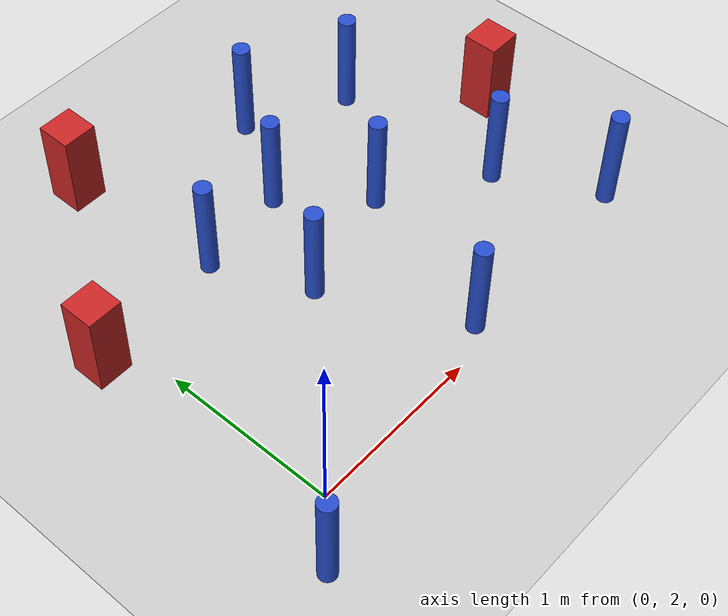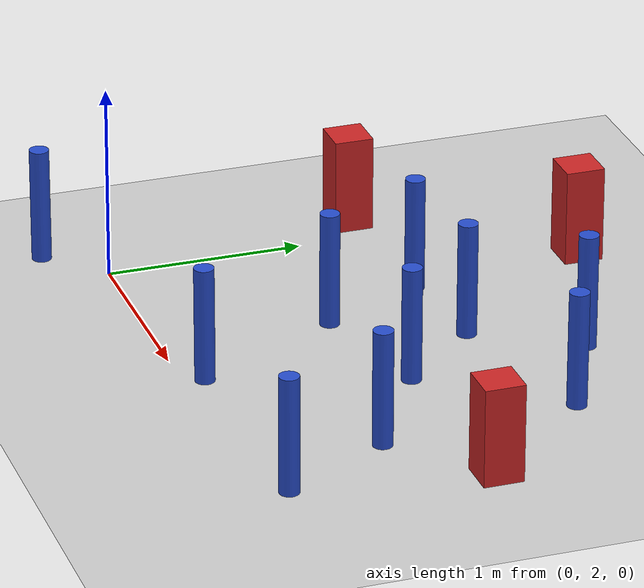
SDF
<sdf version="1.6">
 <world name="default">
  <model name="ground_plane">
   <static>1</static>
   <link name="link">
    <collision name="collision">
     <geometry><plane><normal>0 0 1</normal><size>100 100</size></plane></geometry>
     <surface><friction><ode><mu>100</mu><mu2>50</mu2></ode></friction></surface>
    </collision>
    <visual name="visual">
     <cast_shadows>0</cast_shadows>
     <geometry><plane><normal>0 0 1</normal><size>100 100</size></plane></geometry>
     <material>
      <ambient>1.0 1.0 1.0 1.0</ambient>
      <diffuse>0.8 0.8 0.8 1.0</diffuse>
      <specular>0.01 0.01 0.01 1.000000</specular>
     </material>
    </visual>
   </link>
  </model>
  <model name="pole_obstacle3">
   <static>true</static>
   <pose>1.2492648832 2.10685251621 7.38925637345e-09 -8.47170692799e-08 1.24976765053e-08 -1.74513093017e-07</pose>
   <link name="link">
    <pose>0 0 0.3 0 -0 0</pose>
    <inertial>
     <mass>1</mass>
     <inertia><ixx>0.145833</ixx><ixy>0</ixy><ixz>0</ixz><iyy>0.145833</iyy><iyz>0</iyz><izz>0.125</izz></inertia>
    </inertial>
    <collision name="collision">
     <geometry><cylinder><radius>0.05</radius><length>.6</length></cylinder></geometry>
    </collision>
    <visual name="visual">
     <geometry><cylinder><radius>0.05</radius><length>.6</length></cylinder></geometry>
     <material>
      <script><name>Gazebo/Blue</name><uri>file://media/materials/scripts/gazebo.material</uri></script>
     </material>
    </visual>
   </link>
  </model>
  <model name="pole_obstacle9">
   <static>true</static>
   <pose>1.56069903557 3.04466221461 7.38925637345e-09 -8.47170692799e-08 1.24976765053e-08 -1.74513093017e-07</pose>
   <link name="link">
    <pose>0 0 0.3 0 -0 0</pose>
    <inertial>
     <mass>1</mass>
     <inertia><ixx>0.145833</ixx><ixy>0</ixy><ixz>0</ixz><iyy>0.145833</iyy><iyz>0</iyz><izz>0.125</izz></inertia>
    </inertial>
    <collision name="collision">
     <geometry><cylinder><radius>0.05</radius><length>.6</length></cylinder></geometry>
    </collision>
    <visual name="visual">
     <geometry><cylinder><radius>0.05</radius><length>.6</length></cylinder></geometry>
     <material>
      <script><name>Gazebo/Blue</name><uri>file://media/materials/scripts/gazebo.material</uri></script>
     </material>
    </visual>
   </link>
  </model>
  <model name="pole_obstacle22">
   <static>true</static>
   <pose>0.873941786842 2.86582440378 7.38925637345e-09 -8.47170692799e-08 1.2497676509e-08 -1.74513093016e-07</pose>
   <link name="link">
    <pose>0 0 0.3 0 -0 0</pose>
    <inertial>
     <mass>1</mass>
     <inertia><ixx>0.145833</ixx><ixy>0</ixy><ixz>0</ixz><iyy>0.145833</iyy><iyz>0</iyz><izz>0.125</izz></inertia>
    </inertial>
    <collision name="collision">
     <geometry><cylinder><radius>0.05</radius><length>.6</length></cylinder></geometry>
    </collision>
    <visual name="visual">
     <geometry><cylinder><radius>0.05</radius><length>.6</length></cylinder></geometry>
     <material>
      <script><name>Gazebo/Blue</name><uri>file://media/materials/scripts/gazebo.material</uri></script>
     </material>
    </visual>
   </link>
  </model>
  <model name="pole_obstacle31">
   <static>true</static>
   <pose>0.634519631613 3.39178512038 7.38925637345e-09 -8.47170692799e-08 1.2497676509e-08 -1.74513093016e-07</pose>
   <link name="link">
    <pose>0 0 0.3 0 -0 0</pose>
    <inertial>
     <mass>1</mass>
     <inertia><ixx>0.145833</ixx><ixy>0</ixy><ixz>0</ixz><iyy>0.145833</iyy><iyz>0</iyz><izz>0.125</izz></inertia>
    </inertial>
    <collision name="collision">
     <geometry><cylinder><radius>0.05</radius><length>.6</length></cylinder></geometry>
    </collision>
    <visual name="visual">
     <geometry><cylinder><radius>0.05</radius><length>.6</length></cylinder></geometry>
     <material>
      <script><name>Gazebo/Blue</name><uri>file://media/materials/scripts/gazebo.material</uri></script>
     </material>
    </visual>
   </link>
  </model>
  <model name="pole_obstacle79">
   <static>true</static>
   <pose>2.05758972148 3.69921704619 7.38925637345e-09 -8.47170692798e-08 1.24976764939e-08 -1.74513093025e-07</pose>
   <link name="link">
    <pose>0 0 0.3 0 -0 0</pose>
    <inertial>
     <mass>1</mass>
     <inertia><ixx>0.145833</ixx><ixy>0</ixy><ixz>0</ixz><iyy>0.145833</iyy><iyz>0</iyz><izz>0.125</izz></inertia>
    </inertial>
    <collision name="collision">
     <geometry><cylinder><radius>0.05</radius><length>.6</length></cylinder></geometry>
    </collision>
    <visual name="visual">
     <geometry><cylinder><radius>0.05</radius><length>.6</length></cylinder></geometry>
     <material>
      <script><name>Gazebo/Blue</name><uri>file://media/materials/scripts/gazebo.material</uri></script>
     </material>
    </visual>
   </link>
  </model>
  <model name="pole_obstacle82">
   <static>true</static>
   <pose>1.49854601932 3.96772741222 7.38925637345e-09 -8.47170692799e-08 1.24976765077e-08 -1.74513093019e-07</pose>
   <link name="link">
    <pose>0 0 0.3 0 -0 0</pose>
    <inertial>
     <mass>1</mass>
     <inertia><ixx>0.145833</ixx><ixy>0</ixy><ixz>0</ixz><iyy>0.145833</iyy><iyz>0</iyz><izz>0.125</izz></inertia>
    </inertial>
    <collision name="collision">
     <geometry><cylinder><radius>0.05</radius><length>.6</length></cylinder></geometry>
    </collision>
    <visual name="visual">
     <geometry><cylinder><radius>0.05</radius><length>.6</length></cylinder></geometry>
     <material>
      <script><name>Gazebo/Blue</name><uri>file://media/materials/scripts/gazebo.material</uri></script>
     </material>
    </visual>
   </link>
  </model>
  <model name="square_post_obstacle89">
   <static>true</static>
   <pose>-0.180811467485 3.32275997113 1.91545236811e-07 -7.35059704564e-06 1.12565212e-07 2.39332434364e-05</pose>
   <link name="link">
    <pose>0 0 0.25 0 -0 0</pose>
    <inertial>
     <mass>100</mass>
     <inertia>
      <ixx>0.166667</ixx>
      <ixy>0</ixy>
      <ixz>0</ixz>
      <iyy>0.166667</iyy>
      <iyz>0</iyz>
      <izz>0.166667</izz>
     </inertia>
    </inertial>
    <collision name="collision"><geometry><box><size>.2 .2 .5</size></box></geometry></collision>
    <visual name="visual">
     <geometry><box><size>.2 .2 .5</size></box></geometry>
     <material>
      <script><name>Gazebo/Red</name><uri>file://media/materials/scripts/gazebo.material</uri></script>
     </material>
    </visual>
   </link>
  </model>
  <model name="pole_obstacle106">
   <static>true</static>
   <pose>-0.284214341293 1.72953298172 7.38925637345e-09 -8.471706928e-08 1.24976765077e-08 -1.74513093016e-07</pose>
   <link name="link">
    <pose>0 0 0.3 0 -0 0</pose>
    <inertial>
     <mass>1</mass>
     <inertia><ixx>0.145833</ixx><ixy>0</ixy><ixz>0</ixz><iyy>0.145833</iyy><iyz>0</iyz><izz>0.125</izz></inertia>
    </inertial>
    <collision name="collision">
     <geometry><cylinder><radius>0.05</radius><length>.6</length></cylinder></geometry>
    </collision>
    <visual name="visual">
     <geometry><cylinder><radius>0.05</radius><length>.6</length></cylinder></geometry>
     <material>
      <script><name>Gazebo/Blue</name><uri>file://media/materials/scripts/gazebo.material</uri></script>
     </material>
    </visual>
   </link>
  </model>
  <model name="pole_obstacle127">
   <static>true</static>
   <pose>2.13696443801 2.69597433059 7.38925637345e-09 -8.47170692798e-08 1.24976764939e-08 -1.74513093025e-07</pose>
   <link name="link">
    <pose>0 0 0.3 0 -0 0</pose>
    <inertial>
     <mass>1</mass>
     <inertia><ixx>0.145833</ixx><ixy>0</ixy><ixz>0</ixz><iyy>0.145833</iyy><iyz>0</iyz><izz>0.125</izz></inertia>
    </inertial>
    <collision name="collision">
     <geometry><cylinder><radius>0.05</radius><length>.6</length></cylinder></geometry>
    </collision>
    <visual name="visual">
     <geometry><cylinder><radius>0.05</radius><length>.6</length></cylinder></geometry>
     <material>
      <script><name>Gazebo/Blue</name><uri>file://media/materials/scripts/gazebo.material</uri></script>
     </material>
    </visual>
   </link>
  </model>
  <model name="pole_obstacle141">
   <static>true</static>
   <pose>1.19305378905 3.46222843669 7.38925637345e-09 -8.47170692799e-08 1.24976765053e-08 -1.74513093017e-07</pose>
   <link name="link">
    <pose>0 0 0.3 0 -0 0</pose>
    <inertial>
     <mass>1</mass>
     <inertia><ixx>0.145833</ixx><ixy>0</ixy><ixz>0</ixz><iyy>0.145833</iyy><iyz>0</iyz><izz>0.125</izz></inertia>
    </inertial>
    <collision name="collision">
     <geometry><cylinder><radius>0.05</radius><length>.6</length></cylinder></geometry>
    </collision>
    <visual name="visual">
     <geometry><cylinder><radius>0.05</radius><length>.6</length></cylinder></geometry>
     <material>
      <script><name>Gazebo/Blue</name><uri>file://media/materials/scripts/gazebo.material</uri></script>
     </material>
    </visual>
   </link>
  </model>
  <model name="square_post_obstacle158">
   <static>true</static>
   <pose>0.529607617728 4.29771986497 1.91545236811e-07 -7.35059704564e-06 1.12565212e-07 2.39332434364e-05</pose>
   <link name="link">
    <pose>0 0 0.25 0 -0 0</pose>
    <inertial>
     <mass>100</mass>
     <inertia>
      <ixx>0.166667</ixx>
      <ixy>0</ixy>
      <ixz>0</ixz>
      <iyy>0.166667</iyy>
      <iyz>0</iyz>
      <izz>0.166667</izz>
     </inertia>
    </inertial>
    <collision name="collision"><geometry><box><size>.2 .2 .5</size></box></geometry></collision>
    <visual name="visual">
     <geometry><box><size>.2 .2 .5</size></box></geometry>
     <material>
      <script><name>Gazebo/Red</name><uri>file://media/materials/scripts/gazebo.material</uri></script>
     </material>
    </visual>
   </link>
  </model>
  <model name="pole_obstacle186">
   <static>true</static>
   <pose>2.43050803487 2.13948728588 7.38925637345e-09 -8.47170692798e-08 1.24976764939e-08 -1.74513093025e-07</pose>
   <link name="link">
    <pose>0 0 0.3 0 -0 0</pose>
    <inertial>
     <mass>1</mass>
     <inertia><ixx>0.145833</ixx><ixy>0</ixy><ixz>0</ixz><iyy>0.145833</iyy><iyz>0</iyz><izz>0.125</izz></inertia>
    </inertial>
    <collision name="collision">
     <geometry><cylinder><radius>0.05</radius><length>.6</length></cylinder></geometry>
    </collision>
    <visual name="visual">
     <geometry><cylinder><radius>0.05</radius><length>.6</length></cylinder></geometry>
     <material>
      <script><name>Gazebo/Blue</name><uri>file://media/materials/scripts/gazebo.material</uri></script>
     </material>
    </visual>
   </link>
  </model>
  <model name="square_post_obstacle200">
   <static>true</static>
   <pose>2.58178656556 3.09635011167 1.91545236811e-07 -7.35059704564e-06 1.12565212e-07 2.39332434364e-05</pose>
   <link name="link">
    <pose>0 0 0.25 0 -0 0</pose>
    <inertial>
     <mass>100</mass>
     <inertia>
      <ixx>0.166667</ixx>
      <ixy>0</ixy>
      <ixz>0</ixz>
      <iyy>0.166667</iyy>
      <iyz>0</iyz>
      <izz>0.166667</izz>
     </inertia>
    </inertial>
    <collision name="collision"><geometry><box><size>.2 .2 .5</size></box></geometry></collision>
    <visual name="visual">
     <geometry><box><size>.2 .2 .5</size></box></geometry>
     <material>
      <script><name>Gazebo/Red</name><uri>file://media/materials/scripts/gazebo.material</uri></script>
     </material>
    </visual>
   </link>
  </model>
 </world>
</sdf>
